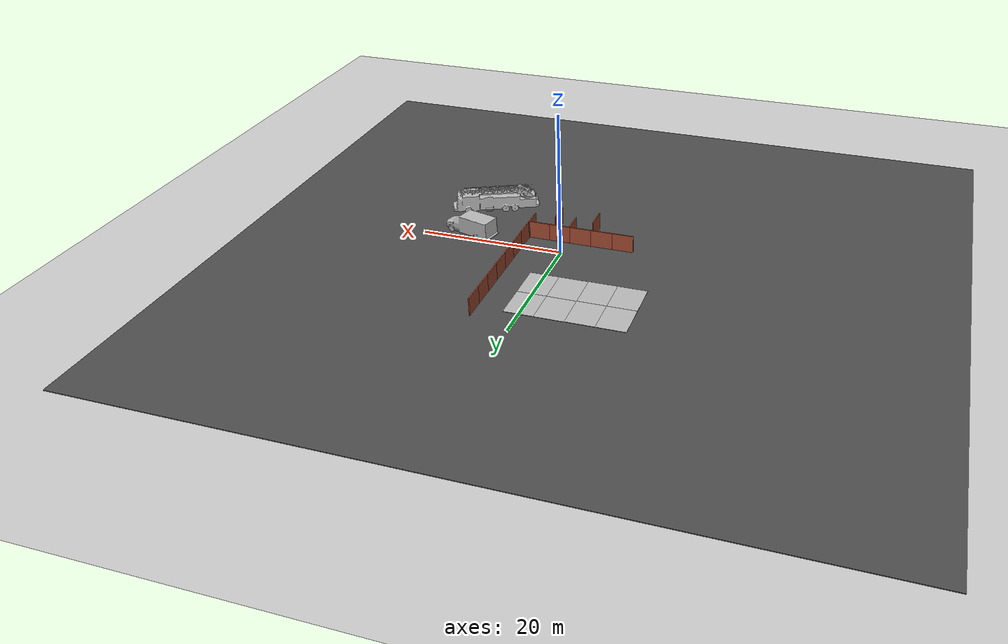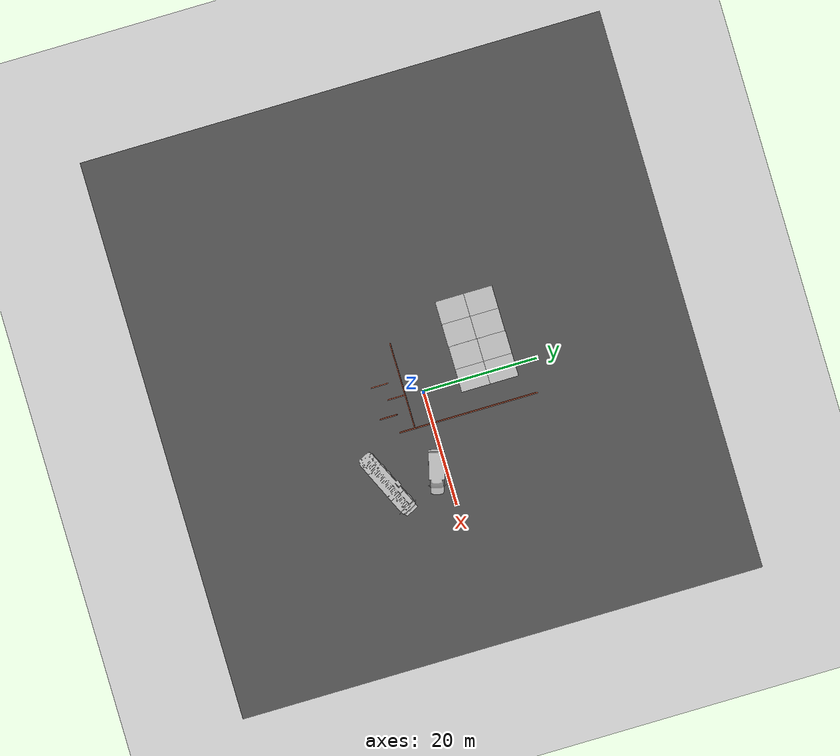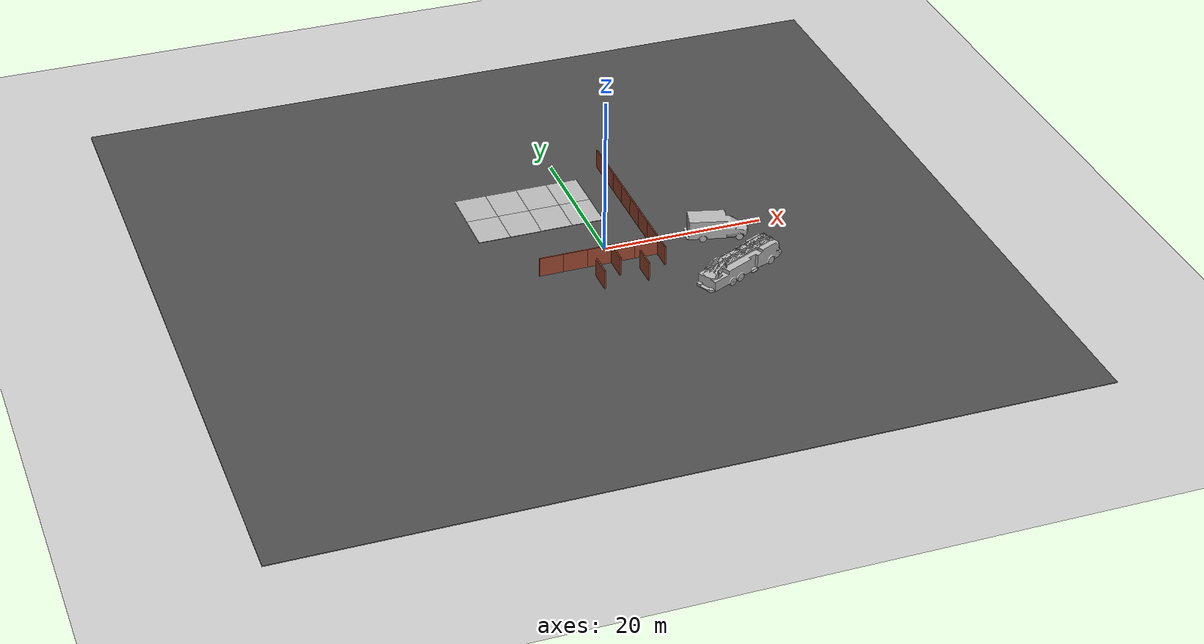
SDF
<sdf version="1.6">
 <world name="default">
  <scene>
   <sky><clouds><speed>5</speed></clouds></sky>
   <ambient>0.4 0.4 0.4 1</ambient>
   <background>0.7 0.7 0.7 1</background>
   <shadows>1</shadows>
  </scene>
  <light name="sun" type="directional">
   <pose>0 0 10 0 -0 0</pose>
   <diffuse>0.8 0.8 0.8 1</diffuse>
   <specular>0.2 0.2 0.2 1</specular>
   <attenuation>
    <range>1000</range>
    <constant>0.9</constant>
    <linear>0.01</linear>
    <quadratic>0.001</quadratic>
   </attenuation>
   <direction>-0.5 0.1 -0.9</direction>
  </light>
  <model name="ground_plane">
   <static>1</static>
   <link name="link">
    <collision name="collision">
     <geometry><plane><normal>0 0 1</normal><size>100 100</size></plane></geometry>
     <surface><friction><ode><mu>100</mu><mu2>50</mu2></ode></friction></surface>
    </collision>
    <visual name="visual">
     <cast_shadows>0</cast_shadows>
     <geometry><plane><normal>0 0 1</normal><size>100 100</size></plane></geometry>
     <material>
      <script><uri>file://media/materials/scripts/gazebo.material</uri><name>Gazebo/Grey</name></script>
     </material>
    </visual>
   </link>
  </model>
  <gravity>0 0 -9.8</gravity>
  <magnetic_field>6e-06 2.3e-05 -4.2e-05</magnetic_field>
  <atmosphere type="adiabatic"/>
  <physics name="default_physics" default="0" type="ode">
   <max_step_size>0.01</max_step_size>
   <real_time_factor>1</real_time_factor>
   <real_time_update_rate>100</real_time_update_rate>
  </physics>
  <scene><ambient>0.4 0.4 0.4 1</ambient><background>0.7 0.7 0.7 1</background><shadows>1</shadows></scene>
  <spherical_coordinates>
   <surface_model>EARTH_WGS84</surface_model>
   <latitude_deg>0</latitude_deg>
   <longitude_deg>0</longitude_deg>
   <elevation>0</elevation>
   <heading_deg>0</heading_deg>
  </spherical_coordinates>
  <model name="ambulance_tagged_2x">
   <static>1</static>
   <link name="link">
    <collision name="collision">
     <geometry>
      <mesh>
       <scale>0.0254 0.0254 0.0254</scale>
       <uri>model://ambulance_tagged_2x/meshes/ambulance_tagged_2x.obj</uri>
      </mesh>
     </geometry>
    </collision>
    <visual name="visual">
     <geometry>
      <mesh>
       <scale>0.0254 0.0254 0.0254</scale>
       <uri>model://ambulance_tagged_2x/meshes/ambulance_tagged_2x.obj</uri>
      </mesh>
     </geometry>
    </visual>
   </link>
   <pose>13.5984 -1.64457 0 0 -0 1.31825</pose>
  </model>
  <model name="fire_truck_tagged_2x">
   <static>1</static>
   <link name="link">
    <collision name="collision">
     <geometry>
      <mesh><scale>0.1 0.1 0.1</scale><uri>model://fire_truck_tagged_2x/meshes/fire_truck_tagged_2x.obj</uri></mesh>
     </geometry>
    </collision>
    <visual name="visual">
     <geometry>
      <mesh><scale>0.1 0.1 0.1</scale><uri>model://fire_truck_tagged_2x/meshes/fire_truck_tagged_2x.obj</uri></mesh>
     </geometry>
    </visual>
   </link>
   <pose>13.6383 -9.95141 0 0 0 -1.13037</pose>
  </model>
  <model name="wall_brick_3m">
   <pose>2.53536 -6.79833 0 0 -0 1.57</pose>
   <link name="Wall_2">
    <collision name="Wall_2_Collision">
     <geometry><box><size>3 0.15 2.5</size></box></geometry>
     <pose>0 0 1.25 0 -0 0</pose>
    </collision>
    <visual name="Wall_2_Visual">
     <pose>0 0 1.25 0 -0 0</pose>
     <geometry><box><size>3 0.15 2.5</size></box></geometry>
     <material>
      <script><uri>file://media/materials/scripts/gazebo.material</uri><name>Gazebo/Bricks</name></script>
      <ambient>1 1 1 1</ambient>
     </material>
     <meta><layer>0</layer></meta>
    </visual>
   </link>
   <static>1</static>
  </model>
  <model name="wall_brick_3m_clone">
   <pose>-0.265232 -4.62667 0 0 -0 1.57</pose>
   <link name="Wall_2">
    <collision name="Wall_2_Collision">
     <geometry><box><size>3 0.15 2.5</size></box></geometry>
     <pose>0 0 1.25 0 -0 0</pose>
    </collision>
    <visual name="Wall_2_Visual">
     <pose>0 0 1.25 0 -0 0</pose>
     <geometry><box><size>3 0.15 2.5</size></box></geometry>
     <material>
      <script><uri>file://media/materials/scripts/gazebo.material</uri><name>Gazebo/Bricks</name></script>
      <ambient>1 1 1 1</ambient>
     </material>
     <meta><layer>0</layer></meta>
    </visual>
   </link>
   <static>1</static>
  </model>
  <model name="wall_brick_3m_clone_clone">
   <pose>-2.96784 -6.78032 0 0 -0 1.57</pose>
   <link name="Wall_2">
    <collision name="Wall_2_Collision">
     <geometry><box><size>3 0.15 2.5</size></box></geometry>
     <pose>0 0 1.25 0 -0 0</pose>
    </collision>
    <visual name="Wall_2_Visual">
     <pose>0 0 1.25 0 -0 0</pose>
     <geometry><box><size>3 0.15 2.5</size></box></geometry>
     <material>
      <script><uri>file://media/materials/scripts/gazebo.material</uri><name>Gazebo/Bricks</name></script>
      <ambient>1 1 1 1</ambient>
     </material>
     <meta><layer>0</layer></meta>
    </visual>
   </link>
   <static>1</static>
  </model>
  <model name="wall_brick_3m_clone_0">
   <pose>5.57817 -4.2114 0 0 -0 1.57</pose>
   <link name="Wall_2">
    <collision name="Wall_2_Collision">
     <geometry><box><size>3 0.15 2.5</size></box></geometry>
     <pose>0 0 1.25 0 -0 0</pose>
    </collision>
    <visual name="Wall_2_Visual">
     <pose>0 0 1.25 0 -0 0</pose>
     <geometry><box><size>3 0.15 2.5</size></box></geometry>
     <material>
      <script><uri>file://media/materials/scripts/gazebo.material</uri><name>Gazebo/Bricks</name></script>
      <ambient>1 1 1 1</ambient>
     </material>
     <meta><layer>0</layer></meta>
    </visual>
   </link>
   <static>1</static>
  </model>
  <model name="wall_brick_3m_clone_1">
   <pose>4.12513 -3.1 0 0 -0 0</pose>
   <link name="Wall_2">
    <collision name="Wall_2_Collision">
     <geometry><box><size>3 0.15 2.5</size></box></geometry>
     <pose>0 0 1.25 0 -0 0</pose>
    </collision>
    <visual name="Wall_2_Visual">
     <pose>0 0 1.25 0 -0 0</pose>
     <geometry><box><size>3 0.15 2.5</size></box></geometry>
     <material>
      <script><uri>file://media/materials/scripts/gazebo.material</uri><name>Gazebo/Bricks</name></script>
      <ambient>1 1 1 1</ambient>
     </material>
     <meta><layer>0</layer></meta>
    </visual>
   </link>
   <static>1</static>
  </model>
  <model name="wall_brick_3m_clone_1_clone">
   <pose>1.12513 -3.1 0 0 -0 0</pose>
   <link name="Wall_2">
    <collision name="Wall_2_Collision">
     <geometry><box><size>3 0.15 2.5</size></box></geometry>
     <pose>0 0 1.25 0 -0 0</pose>
    </collision>
    <visual name="Wall_2_Visual">
     <pose>0 0 1.25 0 -0 0</pose>
     <geometry><box><size>3 0.15 2.5</size></box></geometry>
     <material>
      <script><uri>file://media/materials/scripts/gazebo.material</uri><name>Gazebo/Bricks</name></script>
      <ambient>1 1 1 1</ambient>
     </material>
     <meta><layer>0</layer></meta>
    </visual>
   </link>
   <static>1</static>
  </model>
  <model name="wall_brick_3m_clone_1_clone_0">
   <pose>-1.87487 -3.1 0 0 -0 0</pose>
   <link name="Wall_2">
    <collision name="Wall_2_Collision">
     <geometry><box><size>3 0.15 2.5</size></box></geometry>
     <pose>0 0 1.25 0 -0 0</pose>
    </collision>
    <visual name="Wall_2_Visual">
     <pose>0 0 1.25 0 -0 0</pose>
     <geometry><box><size>3 0.15 2.5</size></box></geometry>
     <material>
      <script><uri>file://media/materials/scripts/gazebo.material</uri><name>Gazebo/Bricks</name></script>
      <ambient>1 1 1 1</ambient>
     </material>
     <meta><layer>0</layer></meta>
    </visual>
   </link>
   <static>1</static>
  </model>
  <model name="wall_brick_3m_clone_1_clone_1">
   <pose>-4.87487 -3.1 0 0 -0 0</pose>
   <link name="Wall_2">
    <collision name="Wall_2_Collision">
     <geometry><box><size>3 0.15 2.5</size></box></geometry>
     <pose>0 0 1.25 0 -0 0</pose>
    </collision>
    <visual name="Wall_2_Visual">
     <pose>0 0 1.25 0 -0 0</pose>
     <geometry><box><size>3 0.15 2.5</size></box></geometry>
     <material>
      <script><uri>file://media/materials/scripts/gazebo.material</uri><name>Gazebo/Bricks</name></script>
      <ambient>1 1 1 1</ambient>
     </material>
     <meta><layer>0</layer></meta>
    </visual>
   </link>
   <static>1</static>
  </model>
  <model name="wall_brick_3m_clone_1_clone_1_clone">
   <pose>-7.87487 -3.11682 0 0 -0 0</pose>
   <link name="Wall_2">
    <collision name="Wall_2_Collision">
     <geometry><box><size>3 0.15 2.5</size></box></geometry>
     <pose>0 0 1.25 0 -0 0</pose>
    </collision>
    <visual name="Wall_2_Visual">
     <pose>0 0 1.25 0 -0 0</pose>
     <geometry><box><size>3 0.15 2.5</size></box></geometry>
     <material>
      <script><uri>file://media/materials/scripts/gazebo.material</uri><name>Gazebo/Bricks</name></script>
      <ambient>1 1 1 1</ambient>
     </material>
     <meta><layer>0</layer></meta>
    </visual>
   </link>
   <static>1</static>
  </model>
  <model name="wall_brick_3m_clone_0_clone">
   <pose>5.57817 -1.21128 0 0 -0 1.57</pose>
   <link name="Wall_2">
    <collision name="Wall_2_Collision">
     <geometry><box><size>3 0.15 2.5</size></box></geometry>
     <pose>0 0 1.25 0 -0 0</pose>
    </collision>
    <visual name="Wall_2_Visual">
     <pose>0 0 1.25 0 -0 0</pose>
     <geometry><box><size>3 0.15 2.5</size></box></geometry>
     <material>
      <script><uri>file://media/materials/scripts/gazebo.material</uri><name>Gazebo/Bricks</name></script>
      <ambient>1 1 1 1</ambient>
     </material>
     <meta><layer>0</layer></meta>
    </visual>
   </link>
   <static>1</static>
  </model>
  <model name="wall_brick_3m_clone_0_clone_clone">
   <pose>5.57817 1.78884 0 0 -0 1.57</pose>
   <link name="Wall_2">
    <collision name="Wall_2_Collision">
     <geometry><box><size>3 0.15 2.5</size></box></geometry>
     <pose>0 0 1.25 0 -0 0</pose>
    </collision>
    <visual name="Wall_2_Visual">
     <pose>0 0 1.25 0 -0 0</pose>
     <geometry><box><size>3 0.15 2.5</size></box></geometry>
     <material>
      <script><uri>file://media/materials/scripts/gazebo.material</uri><name>Gazebo/Bricks</name></script>
      <ambient>1 1 1 1</ambient>
     </material>
     <meta><layer>0</layer></meta>
    </visual>
   </link>
   <static>1</static>
  </model>
  <model name="wall_brick_3m_clone_0_clone_clone_0">
   <pose>5.57817 4.78896 0 0 -0 1.57</pose>
   <link name="Wall_2">
    <collision name="Wall_2_Collision">
     <geometry><box><size>3 0.15 2.5</size></box></geometry>
     <pose>0 0 1.25 0 -0 0</pose>
    </collision>
    <visual name="Wall_2_Visual">
     <pose>0 0 1.25 0 -0 0</pose>
     <geometry><box><size>3 0.15 2.5</size></box></geometry>
     <material>
      <script><uri>file://media/materials/scripts/gazebo.material</uri><name>Gazebo/Bricks</name></script>
      <ambient>1 1 1 1</ambient>
     </material>
     <meta><layer>0</layer></meta>
    </visual>
   </link>
   <static>1</static>
  </model>
  <model name="wall_brick_3m_clone_0_clone_clone_0_clone">
   <pose>5.57817 7.78908 0 0 -0 1.57</pose>
   <link name="Wall_2">
    <collision name="Wall_2_Collision">
     <geometry><box><size>3 0.15 2.5</size></box></geometry>
     <pose>0 0 1.25 0 -0 0</pose>
    </collision>
    <visual name="Wall_2_Visual">
     <pose>0 0 1.25 0 -0 0</pose>
     <geometry><box><size>3 0.15 2.5</size></box></geometry>
     <material>
      <script><uri>file://media/materials/scripts/gazebo.material</uri><name>Gazebo/Bricks</name></script>
      <ambient>1 1 1 1</ambient>
     </material>
     <meta><layer>0</layer></meta>
    </visual>
   </link>
   <static>1</static>
  </model>
  <model name="wall_brick_3m_clone_0_clone_clone_0_clone_clone">
   <pose>5.57817 10.7892 0 0 -0 1.57</pose>
   <link name="Wall_2">
    <collision name="Wall_2_Collision">
     <geometry><box><size>3 0.15 2.5</size></box></geometry>
     <pose>0 0 1.25 0 -0 0</pose>
    </collision>
    <visual name="Wall_2_Visual">
     <pose>0 0 1.25 0 -0 0</pose>
     <geometry><box><size>3 0.15 2.5</size></box></geometry>
     <material>
      <script><uri>file://media/materials/scripts/gazebo.material</uri><name>Gazebo/Bricks</name></script>
      <ambient>1 1 1 1</ambient>
     </material>
     <meta><layer>0</layer></meta>
    </visual>
   </link>
   <static>1</static>
  </model>
  <model name="wall_brick_3m_clone_0_clone_clone_0_clone_clone_0">
   <pose>5.57817 13.7893 0 0 -0 1.57</pose>
   <link name="Wall_2">
    <collision name="Wall_2_Collision">
     <geometry><box><size>3 0.15 2.5</size></box></geometry>
     <pose>0 0 1.25 0 -0 0</pose>
    </collision>
    <visual name="Wall_2_Visual">
     <pose>0 0 1.25 0 -0 0</pose>
     <geometry><box><size>3 0.15 2.5</size></box></geometry>
     <material>
      <script><uri>file://media/materials/scripts/gazebo.material</uri><name>Gazebo/Bricks</name></script>
      <ambient>1 1 1 1</ambient>
     </material>
     <meta><layer>0</layer></meta>
    </visual>
   </link>
   <static>1</static>
  </model>
  <model name="wall_brick_3m_clone_0_clone_clone_0_clone_clone_0_clone">
   <pose>5.57817 16.7894 0 0 -0 1.57</pose>
   <link name="Wall_2">
    <collision name="Wall_2_Collision">
     <geometry><box><size>3 0.15 2.5</size></box></geometry>
     <pose>0 0 1.25 0 -0 0</pose>
    </collision>
    <visual name="Wall_2_Visual">
     <pose>0 0 1.25 0 -0 0</pose>
     <geometry><box><size>3 0.15 2.5</size></box></geometry>
     <material>
      <script><uri>file://media/materials/scripts/gazebo.material</uri><name>Gazebo/Bricks</name></script>
      <ambient>1 1 1 1</ambient>
     </material>
     <meta><layer>0</layer></meta>
    </visual>
   </link>
   <static>1</static>
  </model>
  <model name="asphalt_plane">
   <static>1</static>
   <link name="link">
    <collision name="collision"><geometry><box><size>98.0294 91.5637 0.1</size></box></geometry></collision>
    <visual name="visual">
     <cast_shadows>0</cast_shadows>
     <geometry><box><size>98.0294 91.5637 0.1</size></box></geometry>
     <material>
      <script>
       <uri>model://asphalt_plane/materials/scripts</uri>
       <uri>model://asphalt_plane/materials/textures</uri>
       <name>vrc/asphalt</name>
      </script>
     </material>
    </visual>
   </link>
   <pose>-4.33392 0.897286 0 0 -0 0</pose>
  </model>
  <model name="mud_box">
   <static>1</static>
   <link name="link">
    <collision name="collision"><geometry><box><size>8 10 0.2</size></box></geometry></collision>
    <visual name="visual_1">
     <pose>-2 2.5 0 0 -0 0</pose>
     <cast_shadows>0</cast_shadows>
     <geometry><box><size>4 5 0.2</size></box></geometry>
     <material>
      <script>
       <uri>model://mud_box/materials/scripts</uri>
       <uri>model://mud_box/materials/textures</uri>
       <name>vrc/mud</name>
      </script>
     </material>
    </visual>
    <visual name="visual_2">
     <pose>2 2.5 0 0 -0 0</pose>
     <cast_shadows>0</cast_shadows>
     <geometry><box><size>4 5 0.2</size></box></geometry>
     <material>
      <script>
       <uri>model://mud_box/materials/scripts</uri>
       <uri>model://mud_box/materials/textures</uri>
       <name>vrc/mud</name>
      </script>
     </material>
    </visual>
    <visual name="visual_3">
     <pose>2 -2.5 0 0 -0 0</pose>
     <cast_shadows>0</cast_shadows>
     <geometry><box><size>4 5 0.2</size></box></geometry>
     <material>
      <script>
       <uri>model://mud_box/materials/scripts</uri>
       <uri>model://mud_box/materials/textures</uri>
       <name>vrc/mud</name>
      </script>
     </material>
    </visual>
    <visual name="visual_4">
     <pose>-2 -2.5 0 0 -0 0</pose>
     <cast_shadows>0</cast_shadows>
     <geometry><box><size>4 5 0.2</size></box></geometry>
     <material>
      <script>
       <uri>model://mud_box/materials/scripts</uri>
       <uri>model://mud_box/materials/textures</uri>
       <name>vrc/mud</name>
      </script>
     </material>
    </visual>
   </link>
   <pose>-1.97889 11.186 0 0 -0 0</pose>
  </model>
  <model name="mud_box_clone">
   <static>1</static>
   <link name="link">
    <collision name="collision"><geometry><box><size>8 10 0.2</size></box></geometry></collision>
    <visual name="visual_1">
     <pose>-2 2.5 0 0 -0 0</pose>
     <cast_shadows>0</cast_shadows>
     <geometry><box><size>4 5 0.2</size></box></geometry>
     <material>
      <script>
       <uri>model://mud_box/materials/scripts</uri>
       <uri>model://mud_box/materials/textures</uri>
       <name>vrc/mud</name>
      </script>
     </material>
    </visual>
    <visual name="visual_2">
     <pose>2 2.5 0 0 -0 0</pose>
     <cast_shadows>0</cast_shadows>
     <geometry><box><size>4 5 0.2</size></box></geometry>
     <material>
      <script>
       <uri>model://mud_box/materials/scripts</uri>
       <uri>model://mud_box/materials/textures</uri>
       <name>vrc/mud</name>
      </script>
     </material>
    </visual>
    <visual name="visual_3">
     <pose>2 -2.5 0 0 -0 0</pose>
     <cast_shadows>0</cast_shadows>
     <geometry><box><size>4 5 0.2</size></box></geometry>
     <material>
      <script>
       <uri>model://mud_box/materials/scripts</uri>
       <uri>model://mud_box/materials/textures</uri>
       <name>vrc/mud</name>
      </script>
     </material>
    </visual>
    <visual name="visual_4">
     <pose>-2 -2.5 0 0 -0 0</pose>
     <cast_shadows>0</cast_shadows>
     <geometry><box><size>4 5 0.2</size></box></geometry>
     <material>
      <script>
       <uri>model://mud_box/materials/scripts</uri>
       <uri>model://mud_box/materials/textures</uri>
       <name>vrc/mud</name>
      </script>
     </material>
    </visual>
   </link>
   <pose>-9.92456 11.1339 0 0 -0 0</pose>
  </model>
 </world>
</sdf>
